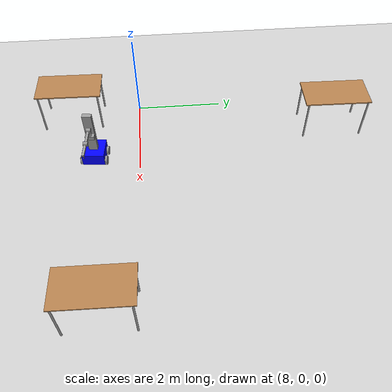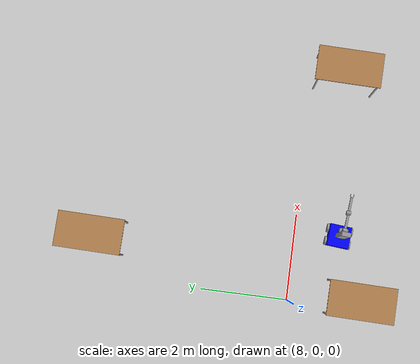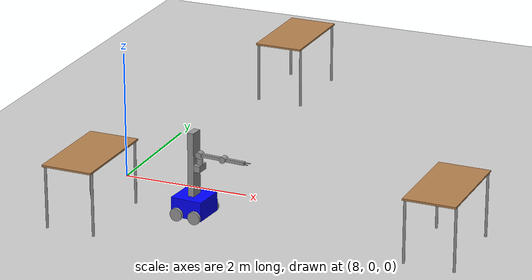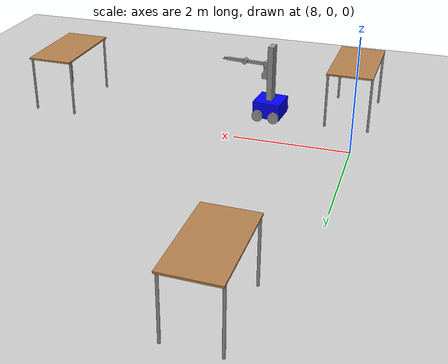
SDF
<sdf version="1.6">
 <world name="default">
  <model name="ground_plane">
   <static>1</static>
   <link name="link">
    <collision name="collision">
     <geometry><plane><normal>0 0 1</normal><size>100 100</size></plane></geometry>
     <surface>
      <contact><collide_bitmask>65535</collide_bitmask></contact>
      <friction><ode><mu>100</mu><mu2>50</mu2></ode></friction>
     </surface>
    </collision>
    <visual name="visual">
     <cast_shadows>0</cast_shadows>
     <geometry><plane><normal>0 0 1</normal><size>100 100</size></plane></geometry>
     <material>
      <script><uri>file://media/materials/scripts/gazebo.material</uri><name>Gazebo/Grey</name></script>
     </material>
    </visual>
   </link>
  </model>
  <model name="table">
   <static>1</static>
   <link name="link">
    <collision name="surface">
     <pose>0 0 1 0 -0 0</pose>
     <geometry><box><size>1.5 0.8 0.03</size></box></geometry>
     <surface><friction><ode><mu>0.6</mu><mu2>0.6</mu2></ode></friction></surface>
    </collision>
    <visual name="visual1">
     <pose>0 0 1 0 -0 0</pose>
     <geometry><box><size>1.5 0.8 0.03</size></box></geometry>
     <material>
      <script><uri>file://media/materials/scripts/gazebo.material</uri><name>Gazebo/Wood</name></script>
     </material>
    </visual>
    <collision name="front_left_leg">
     <pose>0.68 0.38 0.5 0 -0 0</pose>
     <geometry><cylinder><radius>0.02</radius><length>1</length></cylinder></geometry>
    </collision>
    <visual name="front_left_leg">
     <pose>0.68 0.38 0.5 0 -0 0</pose>
     <geometry><cylinder><radius>0.02</radius><length>1</length></cylinder></geometry>
     <material>
      <script><uri>file://media/materials/scripts/gazebo.material</uri><name>Gazebo/Grey</name></script>
     </material>
    </visual>
    <collision name="front_right_leg">
     <pose>0.68 -0.38 0.5 0 -0 0</pose>
     <geometry><cylinder><radius>0.02</radius><length>1</length></cylinder></geometry>
    </collision>
    <visual name="front_right_leg">
     <pose>0.68 -0.38 0.5 0 -0 0</pose>
     <geometry><cylinder><radius>0.02</radius><length>1</length></cylinder></geometry>
     <material>
      <script><uri>file://media/materials/scripts/gazebo.material</uri><name>Gazebo/Grey</name></script>
     </material>
    </visual>
    <collision name="back_right_leg">
     <pose>-0.68 -0.38 0.5 0 -0 0</pose>
     <geometry><cylinder><radius>0.02</radius><length>1</length></cylinder></geometry>
    </collision>
    <visual name="back_right_leg">
     <pose>-0.68 -0.38 0.5 0 -0 0</pose>
     <geometry><cylinder><radius>0.02</radius><length>1</length></cylinder></geometry>
     <material>
      <script><uri>file://media/materials/scripts/gazebo.material</uri><name>Gazebo/Grey</name></script>
     </material>
    </visual>
    <collision name="back_left_leg">
     <pose>-0.68 0.38 0.5 0 -0 0</pose>
     <geometry><cylinder><radius>0.02</radius><length>1</length></cylinder></geometry>
    </collision>
    <visual name="back_left_leg">
     <pose>-0.68 0.38 0.5 0 -0 0</pose>
     <geometry><cylinder><radius>0.02</radius><length>1</length></cylinder></geometry>
     <material>
      <script><uri>file://media/materials/scripts/gazebo.material</uri><name>Gazebo/Grey</name></script>
     </material>
    </visual>
   </link>
   <pose>8.20088 -1.5751 0 0 0 -1.59012</pose>
  </model>
  <model name="table_clone">
   <static>1</static>
   <link name="link">
    <collision name="surface">
     <pose>0 0 1 0 -0 0</pose>
     <geometry><box><size>1.5 0.8 0.03</size></box></geometry>
     <surface><friction><ode><mu>0.6</mu><mu2>0.6</mu2></ode></friction></surface>
    </collision>
    <visual name="visual1">
     <pose>0 0 1 0 -0 0</pose>
     <geometry><box><size>1.5 0.8 0.03</size></box></geometry>
     <material>
      <script><uri>file://media/materials/scripts/gazebo.material</uri><name>Gazebo/Wood</name></script>
     </material>
    </visual>
    <collision name="front_left_leg">
     <pose>0.68 0.38 0.5 0 -0 0</pose>
     <geometry><cylinder><radius>0.02</radius><length>1</length></cylinder></geometry>
    </collision>
    <visual name="front_left_leg">
     <pose>0.68 0.38 0.5 0 -0 0</pose>
     <geometry><cylinder><radius>0.02</radius><length>1</length></cylinder></geometry>
     <material>
      <script><uri>file://media/materials/scripts/gazebo.material</uri><name>Gazebo/Grey</name></script>
     </material>
    </visual>
    <collision name="front_right_leg">
     <pose>0.68 -0.38 0.5 0 -0 0</pose>
     <geometry><cylinder><radius>0.02</radius><length>1</length></cylinder></geometry>
    </collision>
    <visual name="front_right_leg">
     <pose>0.68 -0.38 0.5 0 -0 0</pose>
     <geometry><cylinder><radius>0.02</radius><length>1</length></cylinder></geometry>
     <material>
      <script><uri>file://media/materials/scripts/gazebo.material</uri><name>Gazebo/Grey</name></script>
     </material>
    </visual>
    <collision name="back_right_leg">
     <pose>-0.68 -0.38 0.5 0 -0 0</pose>
     <geometry><cylinder><radius>0.02</radius><length>1</length></cylinder></geometry>
    </collision>
    <visual name="back_right_leg">
     <pose>-0.68 -0.38 0.5 0 -0 0</pose>
     <geometry><cylinder><radius>0.02</radius><length>1</length></cylinder></geometry>
     <material>
      <script><uri>file://media/materials/scripts/gazebo.material</uri><name>Gazebo/Grey</name></script>
     </material>
    </visual>
    <collision name="back_left_leg">
     <pose>-0.68 0.38 0.5 0 -0 0</pose>
     <geometry><cylinder><radius>0.02</radius><length>1</length></cylinder></geometry>
    </collision>
    <visual name="back_left_leg">
     <pose>-0.68 0.38 0.5 0 -0 0</pose>
     <geometry><cylinder><radius>0.02</radius><length>1</length></cylinder></geometry>
     <material>
      <script><uri>file://media/materials/scripts/gazebo.material</uri><name>Gazebo/Grey</name></script>
     </material>
    </visual>
   </link>
   <pose>13.4268 -0.719124 0 0 0 -1.59012</pose>
  </model>
  <model name="mymobilearm">
   <link name="link_0">
    <inertial>
     <mass>1</mass>
     <inertia>
      <ixx>0.166667</ixx>
      <ixy>0</ixy>
      <ixz>0</ixz>
      <iyy>0.166667</iyy>
      <iyz>0</iyz>
      <izz>0.166667</izz>
     </inertia>
    </inertial>
    <pose>-0.332375 0 -0.496874 0 -0 0</pose>
    <visual name="visual">
     <geometry><box><size>0.5 0.5 0.3</size></box></geometry>
     <material>
      <lighting>1</lighting>
      <script><uri>file://media/materials/scripts/gazebo.material</uri><name>Gazebo/Grey</name></script>
      <shader type="pixel"><normal_map>__default__</normal_map></shader>
      <ambient>0 0 1 1</ambient>
      <diffuse>0.7 0.7 0.7 1</diffuse>
      <specular>0.01 0.01 0.01 1</specular>
      <emissive>0 0 0 1</emissive>
     </material>
    </visual>
    <collision name="collision">
     <geometry><box><size>0.5 0.5 0.3</size></box></geometry>
     <surface>
      <friction>
       <ode><mu>1</mu><mu2>1</mu2><fdir1>0 0 0</fdir1><slip1>0</slip1><slip2>0</slip2></ode>
       <torsional>
        <coefficient>1</coefficient>
        <patch_radius>0</patch_radius>
        <surface_radius>0</surface_radius>
        <use_patch_radius>1</use_patch_radius>
        <ode><slip>0</slip></ode>
       </torsional>
      </friction>
      <bounce><restitution_coefficient>0</restitution_coefficient><threshold>1e+06</threshold></bounce>
      <contact>
       <collide_without_contact>0</collide_without_contact>
       <collide_without_contact_bitmask>1</collide_without_contact_bitmask>
       <collide_bitmask>1</collide_bitmask>
       <ode>
        <soft_cfm>0</soft_cfm>
        <soft_erp>0.2</soft_erp>
        <kp>1e+13</kp>
        <kd>1</kd>
        <max_vel>0.01</max_vel>
        <min_depth>0</min_depth>
       </ode>
       <bullet>
        <split_impulse>1</split_impulse>
        <split_impulse_penetration_threshold>-0.01</split_impulse_penetration_threshold>
        <soft_cfm>0</soft_cfm>
        <soft_erp>0.2</soft_erp>
        <kp>1e+13</kp>
        <kd>1</kd>
       </bullet>
      </contact>
     </surface>
    </collision>
   </link>
   <link name="link_10">
    <inertial>
     <mass>1</mass>
     <inertia>
      <ixx>0.166667</ixx>
      <ixy>0</ixy>
      <ixz>0</ixz>
      <iyy>0.166667</iyy>
      <iyz>0</iyz>
      <izz>0.166667</izz>
     </inertia>
    </inertial>
    <pose>-0.332375 0 0.153126 0 -0 0</pose>
    <visual name="visual">
     <geometry><box><size>0.1 0.2 1</size></box></geometry>
     <material>
      <lighting>1</lighting>
      <script><uri>file://media/materials/scripts/gazebo.material</uri><name>Gazebo/Grey</name></script>
      <shader type="pixel"><normal_map>__default__</normal_map></shader>
      <ambient>0.3 0.3 0.3 1</ambient>
      <diffuse>0.7 0.7 0.7 1</diffuse>
      <specular>0.01 0.01 0.01 1</specular>
      <emissive>0 0 0 1</emissive>
     </material>
    </visual>
    <collision name="collision">
     <geometry><box><size>0.1 0.2 1</size></box></geometry>
     <surface>
      <friction>
       <ode><mu>1</mu><mu2>1</mu2><fdir1>0 0 0</fdir1><slip1>0</slip1><slip2>0</slip2></ode>
       <torsional>
        <coefficient>1</coefficient>
        <patch_radius>0</patch_radius>
        <surface_radius>0</surface_radius>
        <use_patch_radius>1</use_patch_radius>
        <ode><slip>0</slip></ode>
       </torsional>
      </friction>
      <bounce><restitution_coefficient>0</restitution_coefficient><threshold>1e+06</threshold></bounce>
      <contact>
       <collide_without_contact>0</collide_without_contact>
       <collide_without_contact_bitmask>1</collide_without_contact_bitmask>
       <collide_bitmask>1</collide_bitmask>
       <ode>
        <soft_cfm>0</soft_cfm>
        <soft_erp>0.2</soft_erp>
        <kp>1e+13</kp>
        <kd>1</kd>
        <max_vel>0.01</max_vel>
        <min_depth>0</min_depth>
       </ode>
       <bullet>
        <split_impulse>1</split_impulse>
        <split_impulse_penetration_threshold>-0.01</split_impulse_penetration_threshold>
        <soft_cfm>0</soft_cfm>
        <soft_erp>0.2</soft_erp>
        <kp>1e+13</kp>
        <kd>1</kd>
       </bullet>
      </contact>
     </surface>
    </collision>
   </link>
   <link name="link_11">
    <inertial>
     <mass>1</mass>
     <inertia>
      <ixx>0.166667</ixx>
      <ixy>0</ixy>
      <ixz>0</ixz>
      <iyy>0.166667</iyy>
      <iyz>0</iyz>
      <izz>0.166667</izz>
     </inertia>
    </inertial>
    <pose>-0.232375 0 0.103126 0 -0 0</pose>
    <visual name="visual">
     <geometry><box><size>0.1 0.2 0.1</size></box></geometry>
     <material>
      <lighting>1</lighting>
      <script><uri>file://media/materials/scripts/gazebo.material</uri><name>Gazebo/Grey</name></script>
      <shader type="pixel"><normal_map>__default__</normal_map></shader>
      <ambient>0.3 0.3 0.3 1</ambient>
      <diffuse>0.7 0.7 0.7 1</diffuse>
      <specular>0.01 0.01 0.01 1</specular>
      <emissive>0 0 0 1</emissive>
     </material>
    </visual>
    <collision name="collision">
     <geometry><box><size>0.1 0.2 0.1</size></box></geometry>
     <surface>
      <friction>
       <ode><mu>1</mu><mu2>1</mu2><fdir1>0 0 0</fdir1><slip1>0</slip1><slip2>0</slip2></ode>
       <torsional>
        <coefficient>1</coefficient>
        <patch_radius>0</patch_radius>
        <surface_radius>0</surface_radius>
        <use_patch_radius>1</use_patch_radius>
        <ode><slip>0</slip></ode>
       </torsional>
      </friction>
      <bounce><restitution_coefficient>0</restitution_coefficient><threshold>1e+06</threshold></bounce>
      <contact>
       <collide_without_contact>0</collide_without_contact>
       <collide_without_contact_bitmask>1</collide_without_contact_bitmask>
       <collide_bitmask>1</collide_bitmask>
       <ode>
        <soft_cfm>0</soft_cfm>
        <soft_erp>0.2</soft_erp>
        <kp>1e+13</kp>
        <kd>1</kd>
        <max_vel>0.01</max_vel>
        <min_depth>0</min_depth>
       </ode>
       <bullet>
        <split_impulse>1</split_impulse>
        <split_impulse_penetration_threshold>-0.01</split_impulse_penetration_threshold>
        <soft_cfm>0</soft_cfm>
        <soft_erp>0.2</soft_erp>
        <kp>1e+13</kp>
        <kd>1</kd>
       </bullet>
      </contact>
     </surface>
    </collision>
   </link>
   <link name="link_12">
    <inertial>
     <mass>1</mass>
     <inertia><ixx>0.145833</ixx><ixy>0</ixy><ixz>0</ixz><iyy>0.145833</iyy><iyz>0</iyz><izz>0.125</izz></inertia>
    </inertial>
    <pose>-0.232375 0 0.203126 0 -0 0</pose>
    <visual name="visual">
     <geometry><cylinder><radius>0.05</radius><length>0.1</length></cylinder></geometry>
     <material>
      <lighting>1</lighting>
      <script><uri>file://media/materials/scripts/gazebo.material</uri><name>Gazebo/Grey</name></script>
      <shader type="pixel"><normal_map>__default__</normal_map></shader>
      <ambient>0.3 0.3 0.3 1</ambient>
      <diffuse>0.7 0.7 0.7 1</diffuse>
      <specular>0.01 0.01 0.01 1</specular>
      <emissive>0 0 0 1</emissive>
     </material>
    </visual>
    <collision name="collision">
     <geometry><cylinder><radius>0.05</radius><length>0.1</length></cylinder></geometry>
     <surface>
      <friction>
       <ode><mu>1</mu><mu2>1</mu2><fdir1>0 0 0</fdir1><slip1>0</slip1><slip2>0</slip2></ode>
       <torsional>
        <coefficient>1</coefficient>
        <patch_radius>0</patch_radius>
        <surface_radius>0</surface_radius>
        <use_patch_radius>1</use_patch_radius>
        <ode><slip>0</slip></ode>
       </torsional>
      </friction>
      <bounce><restitution_coefficient>0</restitution_coefficient><threshold>1e+06</threshold></bounce>
      <contact>
       <collide_without_contact>0</collide_without_contact>
       <collide_without_contact_bitmask>1</collide_without_contact_bitmask>
       <collide_bitmask>1</collide_bitmask>
       <ode>
        <soft_cfm>0</soft_cfm>
        <soft_erp>0.2</soft_erp>
        <kp>1e+13</kp>
        <kd>1</kd>
        <max_vel>0.01</max_vel>
        <min_depth>0</min_depth>
       </ode>
       <bullet>
        <split_impulse>1</split_impulse>
        <split_impulse_penetration_threshold>-0.01</split_impulse_penetration_threshold>
        <soft_cfm>0</soft_cfm>
        <soft_erp>0.2</soft_erp>
        <kp>1e+13</kp>
        <kd>1</kd>
       </bullet>
      </contact>
     </surface>
    </collision>
   </link>
   <link name="link_12_clone">
    <inertial>
     <mass>1</mass>
     <inertia><ixx>0.145833</ixx><ixy>0</ixy><ixz>0</ixz><iyy>0.145833</iyy><iyz>0</iyz><izz>0.125</izz></inertia>
    </inertial>
    <pose>-0.232375 0 0.303126 1.5707 -0 0</pose>
    <visual name="visual">
     <geometry><cylinder><radius>0.05</radius><length>0.1</length></cylinder></geometry>
     <material>
      <lighting>1</lighting>
      <script><uri>file://media/materials/scripts/gazebo.material</uri><name>Gazebo/Grey</name></script>
      <shader type="pixel"><normal_map>__default__</normal_map></shader>
      <ambient>0.3 0.3 0.3 1</ambient>
      <diffuse>0.7 0.7 0.7 1</diffuse>
      <specular>0.01 0.01 0.01 1</specular>
      <emissive>0 0 0 1</emissive>
     </material>
    </visual>
    <collision name="collision">
     <geometry><cylinder><radius>0.05</radius><length>0.1</length></cylinder></geometry>
     <surface>
      <friction>
       <ode><mu>1</mu><mu2>1</mu2><fdir1>0 0 0</fdir1><slip1>0</slip1><slip2>0</slip2></ode>
       <torsional>
        <coefficient>1</coefficient>
        <patch_radius>0</patch_radius>
        <surface_radius>0</surface_radius>
        <use_patch_radius>1</use_patch_radius>
        <ode><slip>0</slip></ode>
       </torsional>
      </friction>
      <bounce><restitution_coefficient>0</restitution_coefficient><threshold>1e+06</threshold></bounce>
      <contact>
       <collide_without_contact>0</collide_without_contact>
       <collide_without_contact_bitmask>1</collide_without_contact_bitmask>
       <collide_bitmask>1</collide_bitmask>
       <ode>
        <soft_cfm>0</soft_cfm>
        <soft_erp>0.2</soft_erp>
        <kp>1e+13</kp>
        <kd>1</kd>
        <max_vel>0.01</max_vel>
        <min_depth>0</min_depth>
       </ode>
       <bullet>
        <split_impulse>1</split_impulse>
        <split_impulse_penetration_threshold>-0.01</split_impulse_penetration_threshold>
        <soft_cfm>0</soft_cfm>
        <soft_erp>0.2</soft_erp>
        <kp>1e+13</kp>
        <kd>1</kd>
       </bullet>
      </contact>
     </surface>
    </collision>
   </link>
   <link name="link_12_clone_clone">
    <inertial>
     <mass>1</mass>
     <inertia><ixx>0.145833</ixx><ixy>0</ixy><ixz>0</ixz><iyy>0.145833</iyy><iyz>0</iyz><izz>0.125</izz></inertia>
    </inertial>
    <pose>0.167625 0 0.303126 1.5707 -0 0</pose>
    <visual name="visual">
     <geometry><cylinder><radius>0.05</radius><length>0.1</length></cylinder></geometry>
     <material>
      <lighting>1</lighting>
      <script><uri>file://media/materials/scripts/gazebo.material</uri><name>Gazebo/Grey</name></script>
      <shader type="pixel"><normal_map>__default__</normal_map></shader>
      <ambient>0.3 0.3 0.3 1</ambient>
      <diffuse>0.7 0.7 0.7 1</diffuse>
      <specular>0.01 0.01 0.01 1</specular>
      <emissive>0 0 0 1</emissive>
     </material>
    </visual>
    <collision name="collision">
     <geometry><cylinder><radius>0.05</radius><length>0.1</length></cylinder></geometry>
     <surface>
      <friction>
       <ode><mu>1</mu><mu2>1</mu2><fdir1>0 0 0</fdir1><slip1>0</slip1><slip2>0</slip2></ode>
       <torsional>
        <coefficient>1</coefficient>
        <patch_radius>0</patch_radius>
        <surface_radius>0</surface_radius>
        <use_patch_radius>1</use_patch_radius>
        <ode><slip>0</slip></ode>
       </torsional>
      </friction>
      <bounce><restitution_coefficient>0</restitution_coefficient><threshold>1e+06</threshold></bounce>
      <contact>
       <collide_without_contact>0</collide_without_contact>
       <collide_without_contact_bitmask>1</collide_without_contact_bitmask>
       <collide_bitmask>1</collide_bitmask>
       <ode>
        <soft_cfm>0</soft_cfm>
        <soft_erp>0.2</soft_erp>
        <kp>1e+13</kp>
        <kd>1</kd>
        <max_vel>0.01</max_vel>
        <min_depth>0</min_depth>
       </ode>
       <bullet>
        <split_impulse>1</split_impulse>
        <split_impulse_penetration_threshold>-0.01</split_impulse_penetration_threshold>
        <soft_cfm>0</soft_cfm>
        <soft_erp>0.2</soft_erp>
        <kp>1e+13</kp>
        <kd>1</kd>
       </bullet>
      </contact>
     </surface>
    </collision>
   </link>
   <link name="link_14">
    <inertial>
     <mass>1</mass>
     <inertia>
      <ixx>0.166667</ixx>
      <ixy>0</ixy>
      <ixz>0</ixz>
      <iyy>0.166667</iyy>
      <iyz>0</iyz>
      <izz>0.166667</izz>
     </inertia>
    </inertial>
    <pose>-0.032375 0 0.303126 1.5707 -0 0</pose>
    <visual name="visual">
     <geometry><box><size>0.3 0.05 0.05</size></box></geometry>
     <material>
      <lighting>1</lighting>
      <script><uri>file://media/materials/scripts/gazebo.material</uri><name>Gazebo/Grey</name></script>
      <shader type="pixel"><normal_map>__default__</normal_map></shader>
      <ambient>0.3 0.3 0.3 1</ambient>
      <diffuse>0.7 0.7 0.7 1</diffuse>
      <specular>0.01 0.01 0.01 1</specular>
      <emissive>0 0 0 1</emissive>
     </material>
    </visual>
    <collision name="collision">
     <geometry><box><size>0.3 0.05 0.05</size></box></geometry>
     <surface>
      <friction>
       <ode><mu>1</mu><mu2>1</mu2><fdir1>0 0 0</fdir1><slip1>0</slip1><slip2>0</slip2></ode>
       <torsional>
        <coefficient>1</coefficient>
        <patch_radius>0</patch_radius>
        <surface_radius>0</surface_radius>
        <use_patch_radius>1</use_patch_radius>
        <ode><slip>0</slip></ode>
       </torsional>
      </friction>
      <bounce><restitution_coefficient>0</restitution_coefficient><threshold>1e+06</threshold></bounce>
      <contact>
       <collide_without_contact>0</collide_without_contact>
       <collide_without_contact_bitmask>1</collide_without_contact_bitmask>
       <collide_bitmask>1</collide_bitmask>
       <ode>
        <soft_cfm>0</soft_cfm>
        <soft_erp>0.2</soft_erp>
        <kp>1e+13</kp>
        <kd>1</kd>
        <max_vel>0.01</max_vel>
        <min_depth>0</min_depth>
       </ode>
       <bullet>
        <split_impulse>1</split_impulse>
        <split_impulse_penetration_threshold>-0.01</split_impulse_penetration_threshold>
        <soft_cfm>0</soft_cfm>
        <soft_erp>0.2</soft_erp>
        <kp>1e+13</kp>
        <kd>1</kd>
       </bullet>
      </contact>
     </surface>
    </collision>
   </link>
   <link name="link_14_clone">
    <inertial>
     <mass>1</mass>
     <inertia>
      <ixx>0.166667</ixx>
      <ixy>0</ixy>
      <ixz>0</ixz>
      <iyy>0.166667</iyy>
      <iyz>0</iyz>
      <izz>0.166667</izz>
     </inertia>
    </inertial>
    <pose>0.367625 0 0.303126 1.5707 -0 0</pose>
    <visual name="visual">
     <geometry><box><size>0.3 0.05 0.05</size></box></geometry>
     <material>
      <lighting>1</lighting>
      <script><uri>file://media/materials/scripts/gazebo.material</uri><name>Gazebo/Grey</name></script>
      <shader type="pixel"><normal_map>__default__</normal_map></shader>
      <ambient>0.3 0.3 0.3 1</ambient>
      <diffuse>0.7 0.7 0.7 1</diffuse>
      <specular>0.01 0.01 0.01 1</specular>
      <emissive>0 0 0 1</emissive>
     </material>
    </visual>
    <collision name="collision">
     <geometry><box><size>0.3 0.05 0.05</size></box></geometry>
     <surface>
      <friction>
       <ode><mu>1</mu><mu2>1</mu2><fdir1>0 0 0</fdir1><slip1>0</slip1><slip2>0</slip2></ode>
       <torsional>
        <coefficient>1</coefficient>
        <patch_radius>0</patch_radius>
        <surface_radius>0</surface_radius>
        <use_patch_radius>1</use_patch_radius>
        <ode><slip>0</slip></ode>
       </torsional>
      </friction>
      <bounce><restitution_coefficient>0</restitution_coefficient><threshold>1e+06</threshold></bounce>
      <contact>
       <collide_without_contact>0</collide_without_contact>
       <collide_without_contact_bitmask>1</collide_without_contact_bitmask>
       <collide_bitmask>1</collide_bitmask>
       <ode>
        <soft_cfm>0</soft_cfm>
        <soft_erp>0.2</soft_erp>
        <kp>1e+13</kp>
        <kd>1</kd>
        <max_vel>0.01</max_vel>
        <min_depth>0</min_depth>
       </ode>
       <bullet>
        <split_impulse>1</split_impulse>
        <split_impulse_penetration_threshold>-0.01</split_impulse_penetration_threshold>
        <soft_cfm>0</soft_cfm>
        <soft_erp>0.2</soft_erp>
        <kp>1e+13</kp>
        <kd>1</kd>
       </bullet>
      </contact>
     </surface>
    </collision>
   </link>
   <link name="link_15">
    <inertial>
     <mass>1</mass>
     <inertia>
      <ixx>0.166667</ixx>
      <ixy>0</ixy>
      <ixz>0</ixz>
      <iyy>0.166667</iyy>
      <iyz>0</iyz>
      <izz>0.166667</izz>
     </inertia>
    </inertial>
    <pose>0.566625 0.036 0.303126 0 -0 0</pose>
    <visual name="visual">
     <geometry><box><size>0.05 0.01 0.01</size></box></geometry>
     <material>
      <lighting>1</lighting>
      <script><uri>file://media/materials/scripts/gazebo.material</uri><name>Gazebo/Grey</name></script>
      <shader type="pixel"><normal_map>__default__</normal_map></shader>
      <ambient>0.3 0.3 0.3 1</ambient>
      <diffuse>0.7 0.7 0.7 1</diffuse>
      <specular>0.01 0.01 0.01 1</specular>
      <emissive>0 0 0 1</emissive>
     </material>
    </visual>
    <collision name="collision">
     <geometry><box><size>0.05 0.01 0.01</size></box></geometry>
     <surface>
      <friction>
       <ode><mu>1</mu><mu2>1</mu2><fdir1>0 0 0</fdir1><slip1>0</slip1><slip2>0</slip2></ode>
       <torsional>
        <coefficient>1</coefficient>
        <patch_radius>0</patch_radius>
        <surface_radius>0</surface_radius>
        <use_patch_radius>1</use_patch_radius>
        <ode><slip>0</slip></ode>
       </torsional>
      </friction>
      <bounce><restitution_coefficient>0</restitution_coefficient><threshold>1e+06</threshold></bounce>
      <contact>
       <collide_without_contact>0</collide_without_contact>
       <collide_without_contact_bitmask>1</collide_without_contact_bitmask>
       <collide_bitmask>1</collide_bitmask>
       <ode>
        <soft_cfm>0</soft_cfm>
        <soft_erp>0.2</soft_erp>
        <kp>1e+13</kp>
        <kd>1</kd>
        <max_vel>0.01</max_vel>
        <min_depth>0</min_depth>
       </ode>
       <bullet>
        <split_impulse>1</split_impulse>
        <split_impulse_penetration_threshold>-0.01</split_impulse_penetration_threshold>
        <soft_cfm>0</soft_cfm>
        <soft_erp>0.2</soft_erp>
        <kp>1e+13</kp>
        <kd>1</kd>
       </bullet>
      </contact>
     </surface>
    </collision>
   </link>
   <link name="link_15_clone">
    <inertial>
     <mass>1</mass>
     <inertia>
      <ixx>0.166667</ixx>
      <ixy>0</ixy>
      <ixz>0</ixz>
      <iyy>0.166667</iyy>
      <iyz>0</iyz>
      <izz>0.166667</izz>
     </inertia>
    </inertial>
    <pose>0.566625 -0.036 0.303126 0 -0 0</pose>
    <visual name="visual">
     <geometry><box><size>0.05 0.01 0.01</size></box></geometry>
     <material>
      <lighting>1</lighting>
      <script><uri>file://media/materials/scripts/gazebo.material</uri><name>Gazebo/Grey</name></script>
      <shader type="pixel"><normal_map>__default__</normal_map></shader>
      <ambient>0.3 0.3 0.3 1</ambient>
      <diffuse>0.7 0.7 0.7 1</diffuse>
      <specular>0.01 0.01 0.01 1</specular>
      <emissive>0 0 0 1</emissive>
     </material>
    </visual>
    <collision name="collision">
     <geometry><box><size>0.05 0.01 0.01</size></box></geometry>
     <surface>
      <friction>
       <ode><mu>1</mu><mu2>1</mu2><fdir1>0 0 0</fdir1><slip1>0</slip1><slip2>0</slip2></ode>
       <torsional>
        <coefficient>1</coefficient>
        <patch_radius>0</patch_radius>
        <surface_radius>0</surface_radius>
        <use_patch_radius>1</use_patch_radius>
        <ode><slip>0</slip></ode>
       </torsional>
      </friction>
      <bounce><restitution_coefficient>0</restitution_coefficient><threshold>1e+06</threshold></bounce>
      <contact>
       <collide_without_contact>0</collide_without_contact>
       <collide_without_contact_bitmask>1</collide_without_contact_bitmask>
       <collide_bitmask>1</collide_bitmask>
       <ode>
        <soft_cfm>0</soft_cfm>
        <soft_erp>0.2</soft_erp>
        <kp>1e+13</kp>
        <kd>1</kd>
        <max_vel>0.01</max_vel>
        <min_depth>0</min_depth>
       </ode>
       <bullet>
        <split_impulse>1</split_impulse>
        <split_impulse_penetration_threshold>-0.01</split_impulse_penetration_threshold>
        <soft_cfm>0</soft_cfm>
        <soft_erp>0.2</soft_erp>
        <kp>1e+13</kp>
        <kd>1</kd>
       </bullet>
      </contact>
     </surface>
    </collision>
   </link>
   <link name="link_15_clone_0">
    <inertial>
     <mass>1</mass>
     <inertia>
      <ixx>0.166667</ixx>
      <ixy>0</ixy>
      <ixz>0</ixz>
      <iyy>0.166667</iyy>
      <iyz>0</iyz>
      <izz>0.166667</izz>
     </inertia>
    </inertial>
    <pose>0.527625 -0.02 0.303126 0 0 -0.785398</pose>
    <visual name="visual">
     <geometry><box><size>0.05 0.01 0.01</size></box></geometry>
     <material>
      <lighting>1</lighting>
      <script><uri>file://media/materials/scripts/gazebo.material</uri><name>Gazebo/Grey</name></script>
      <shader type="pixel"><normal_map>__default__</normal_map></shader>
      <ambient>0.3 0.3 0.3 1</ambient>
      <diffuse>0.7 0.7 0.7 1</diffuse>
      <specular>0.01 0.01 0.01 1</specular>
      <emissive>0 0 0 1</emissive>
     </material>
    </visual>
    <collision name="collision">
     <geometry><box><size>0.05 0.01 0.01</size></box></geometry>
     <surface>
      <friction>
       <ode><mu>1</mu><mu2>1</mu2><fdir1>0 0 0</fdir1><slip1>0</slip1><slip2>0</slip2></ode>
       <torsional>
        <coefficient>1</coefficient>
        <patch_radius>0</patch_radius>
        <surface_radius>0</surface_radius>
        <use_patch_radius>1</use_patch_radius>
        <ode><slip>0</slip></ode>
       </torsional>
      </friction>
      <bounce><restitution_coefficient>0</restitution_coefficient><threshold>1e+06</threshold></bounce>
      <contact>
       <collide_without_contact>0</collide_without_contact>
       <collide_without_contact_bitmask>1</collide_without_contact_bitmask>
       <collide_bitmask>1</collide_bitmask>
       <ode>
        <soft_cfm>0</soft_cfm>
        <soft_erp>0.2</soft_erp>
        <kp>1e+13</kp>
        <kd>1</kd>
        <max_vel>0.01</max_vel>
        <min_depth>0</min_depth>
       </ode>
       <bullet>
        <split_impulse>1</split_impulse>
        <split_impulse_penetration_threshold>-0.01</split_impulse_penetration_threshold>
        <soft_cfm>0</soft_cfm>
        <soft_erp>0.2</soft_erp>
        <kp>1e+13</kp>
        <kd>1</kd>
       </bullet>
      </contact>
     </surface>
    </collision>
   </link>
   <link name="link_15_clone_1">
    <inertial>
     <mass>1</mass>
     <inertia>
      <ixx>0.166667</ixx>
      <ixy>0</ixy>
      <ixz>0</ixz>
      <iyy>0.166667</iyy>
      <iyz>0</iyz>
      <izz>0.166667</izz>
     </inertia>
    </inertial>
    <pose>0.527625 0.02 0.303126 0 -0 0.785398</pose>
    <visual name="visual">
     <geometry><box><size>0.05 0.01 0.01</size></box></geometry>
     <material>
      <lighting>1</lighting>
      <script><uri>file://media/materials/scripts/gazebo.material</uri><name>Gazebo/Grey</name></script>
      <shader type="pixel"><normal_map>__default__</normal_map></shader>
      <ambient>0.3 0.3 0.3 1</ambient>
      <diffuse>0.7 0.7 0.7 1</diffuse>
      <specular>0.01 0.01 0.01 1</specular>
      <emissive>0 0 0 1</emissive>
     </material>
    </visual>
    <collision name="collision">
     <geometry><box><size>0.05 0.01 0.01</size></box></geometry>
     <surface>
      <friction>
       <ode><mu>1</mu><mu2>1</mu2><fdir1>0 0 0</fdir1><slip1>0</slip1><slip2>0</slip2></ode>
       <torsional>
        <coefficient>1</coefficient>
        <patch_radius>0</patch_radius>
        <surface_radius>0</surface_radius>
        <use_patch_radius>1</use_patch_radius>
        <ode><slip>0</slip></ode>
       </torsional>
      </friction>
      <bounce><restitution_coefficient>0</restitution_coefficient><threshold>1e+06</threshold></bounce>
      <contact>
       <collide_without_contact>0</collide_without_contact>
       <collide_without_contact_bitmask>1</collide_without_contact_bitmask>
       <collide_bitmask>1</collide_bitmask>
       <ode>
        <soft_cfm>0</soft_cfm>
        <soft_erp>0.2</soft_erp>
        <kp>1e+13</kp>
        <kd>1</kd>
        <max_vel>0.01</max_vel>
        <min_depth>0</min_depth>
       </ode>
       <bullet>
        <split_impulse>1</split_impulse>
        <split_impulse_penetration_threshold>-0.01</split_impulse_penetration_threshold>
        <soft_cfm>0</soft_cfm>
        <soft_erp>0.2</soft_erp>
        <kp>1e+13</kp>
        <kd>1</kd>
       </bullet>
      </contact>
     </surface>
    </collision>
   </link>
   <link name="link_1_clone">
    <inertial>
     <mass>1</mass>
     <inertia><ixx>0.145833</ixx><ixy>0</ixy><ixz>0</ixz><iyy>0.145833</iyy><iyz>0</iyz><izz>0.125</izz></inertia>
     <pose>0 0 0.1 0 -0 0</pose>
    </inertial>
    <pose>-0.182375 0.27501 -0.596879 1.5707 -0 0</pose>
    <visual name="visual">
     <geometry><cylinder><radius>0.1</radius><length>0.05</length></cylinder></geometry>
     <material>
      <lighting>1</lighting>
      <script><uri>file://media/materials/scripts/gazebo.material</uri><name>Gazebo/Grey</name></script>
      <shader type="pixel"><normal_map>__default__</normal_map></shader>
      <ambient>0.3 0.3 0.3 1</ambient>
      <diffuse>0.7 0.7 0.7 1</diffuse>
      <specular>0.01 0.01 0.01 1</specular>
      <emissive>0 0 0 1</emissive>
     </material>
    </visual>
    <collision name="collision">
     <geometry><cylinder><radius>0.1</radius><length>0.05</length></cylinder></geometry>
     <surface>
      <friction>
       <ode><mu>1</mu><mu2>1</mu2><fdir1>0 0 0</fdir1><slip1>0</slip1><slip2>0</slip2></ode>
       <torsional>
        <coefficient>1</coefficient>
        <patch_radius>0</patch_radius>
        <surface_radius>0</surface_radius>
        <use_patch_radius>1</use_patch_radius>
        <ode><slip>0</slip></ode>
       </torsional>
      </friction>
      <bounce><restitution_coefficient>0</restitution_coefficient><threshold>1e+06</threshold></bounce>
      <contact>
       <collide_without_contact>0</collide_without_contact>
       <collide_without_contact_bitmask>1</collide_without_contact_bitmask>
       <collide_bitmask>1</collide_bitmask>
       <ode>
        <soft_cfm>0</soft_cfm>
        <soft_erp>0.2</soft_erp>
        <kp>1e+13</kp>
        <kd>1</kd>
        <max_vel>0.01</max_vel>
        <min_depth>0</min_depth>
       </ode>
       <bullet>
        <split_impulse>1</split_impulse>
        <split_impulse_penetration_threshold>-0.01</split_impulse_penetration_threshold>
        <soft_cfm>0</soft_cfm>
        <soft_erp>0.2</soft_erp>
        <kp>1e+13</kp>
        <kd>1</kd>
       </bullet>
      </contact>
     </surface>
    </collision>
   </link>
   <link name="link_1_clone_clone">
    <inertial>
     <mass>1</mass>
     <inertia><ixx>0.145833</ixx><ixy>0</ixy><ixz>0</ixz><iyy>0.145833</iyy><iyz>0</iyz><izz>0.125</izz></inertia>
     <pose>0 0 0.1 0 -0 0</pose>
    </inertial>
    <pose>-0.182375 -0.27501 -0.596879 1.5707 -0 0</pose>
    <visual name="visual">
     <geometry><cylinder><radius>0.1</radius><length>0.05</length></cylinder></geometry>
     <material>
      <lighting>1</lighting>
      <script><uri>file://media/materials/scripts/gazebo.material</uri><name>Gazebo/Grey</name></script>
      <shader type="pixel"><normal_map>__default__</normal_map></shader>
      <ambient>0.3 0.3 0.3 1</ambient>
      <diffuse>0.7 0.7 0.7 1</diffuse>
      <specular>0.01 0.01 0.01 1</specular>
      <emissive>0 0 0 1</emissive>
     </material>
    </visual>
    <collision name="collision">
     <geometry><cylinder><radius>0.1</radius><length>0.05</length></cylinder></geometry>
     <surface>
      <friction>
       <ode><mu>1</mu><mu2>1</mu2><fdir1>0 0 0</fdir1><slip1>0</slip1><slip2>0</slip2></ode>
       <torsional>
        <coefficient>1</coefficient>
        <patch_radius>0</patch_radius>
        <surface_radius>0</surface_radius>
        <use_patch_radius>1</use_patch_radius>
        <ode><slip>0</slip></ode>
       </torsional>
      </friction>
      <bounce><restitution_coefficient>0</restitution_coefficient><threshold>1e+06</threshold></bounce>
      <contact>
       <collide_without_contact>0</collide_without_contact>
       <collide_without_contact_bitmask>1</collide_without_contact_bitmask>
       <collide_bitmask>1</collide_bitmask>
       <ode>
        <soft_cfm>0</soft_cfm>
        <soft_erp>0.2</soft_erp>
        <kp>1e+13</kp>
        <kd>1</kd>
        <max_vel>0.01</max_vel>
        <min_depth>0</min_depth>
       </ode>
       <bullet>
        <split_impulse>1</split_impulse>
        <split_impulse_penetration_threshold>-0.01</split_impulse_penetration_threshold>
        <soft_cfm>0</soft_cfm>
        <soft_erp>0.2</soft_erp>
        <kp>1e+13</kp>
        <kd>1</kd>
       </bullet>
      </contact>
     </surface>
    </collision>
   </link>
   <link name="link_1_clone_clone_0">
    <inertial>
     <mass>1</mass>
     <inertia><ixx>0.145833</ixx><ixy>0</ixy><ixz>0</ixz><iyy>0.145833</iyy><iyz>0</iyz><izz>0.125</izz></inertia>
     <pose>0 0 0.1 0 -0 0</pose>
    </inertial>
    <pose>-0.482375 -0.27501 -0.596879 1.5707 -0 0</pose>
    <visual name="visual">
     <geometry><cylinder><radius>0.1</radius><length>0.05</length></cylinder></geometry>
     <material>
      <lighting>1</lighting>
      <script><uri>file://media/materials/scripts/gazebo.material</uri><name>Gazebo/Grey</name></script>
      <shader type="pixel"><normal_map>__default__</normal_map></shader>
      <ambient>0.3 0.3 0.3 1</ambient>
      <diffuse>0.7 0.7 0.7 1</diffuse>
      <specular>0.01 0.01 0.01 1</specular>
      <emissive>0 0 0 1</emissive>
     </material>
    </visual>
    <collision name="collision">
     <geometry><cylinder><radius>0.1</radius><length>0.05</length></cylinder></geometry>
     <surface>
      <friction>
       <ode><mu>1</mu><mu2>1</mu2><fdir1>0 0 0</fdir1><slip1>0</slip1><slip2>0</slip2></ode>
       <torsional>
        <coefficient>1</coefficient>
        <patch_radius>0</patch_radius>
        <surface_radius>0</surface_radius>
        <use_patch_radius>1</use_patch_radius>
        <ode><slip>0</slip></ode>
       </torsional>
      </friction>
      <bounce><restitution_coefficient>0</restitution_coefficient><threshold>1e+06</threshold></bounce>
      <contact>
       <collide_without_contact>0</collide_without_contact>
       <collide_without_contact_bitmask>1</collide_without_contact_bitmask>
       <collide_bitmask>1</collide_bitmask>
       <ode>
        <soft_cfm>0</soft_cfm>
        <soft_erp>0.2</soft_erp>
        <kp>1e+13</kp>
        <kd>1</kd>
        <max_vel>0.01</max_vel>
        <min_depth>0</min_depth>
       </ode>
       <bullet>
        <split_impulse>1</split_impulse>
        <split_impulse_penetration_threshold>-0.01</split_impulse_penetration_threshold>
        <soft_cfm>0</soft_cfm>
        <soft_erp>0.2</soft_erp>
        <kp>1e+13</kp>
        <kd>1</kd>
       </bullet>
      </contact>
     </surface>
    </collision>
   </link>
   <link name="link_1_clone_clone_1">
    <inertial>
     <mass>1</mass>
     <inertia><ixx>0.145833</ixx><ixy>0</ixy><ixz>0</ixz><iyy>0.145833</iyy><iyz>0</iyz><izz>0.125</izz></inertia>
     <pose>0 0 0.1 0 -0 0</pose>
    </inertial>
    <pose>-0.482375 0.27501 -0.596879 1.5707 -0 0</pose>
    <visual name="visual">
     <geometry><cylinder><radius>0.1</radius><length>0.05</length></cylinder></geometry>
     <material>
      <lighting>1</lighting>
      <script><uri>file://media/materials/scripts/gazebo.material</uri><name>Gazebo/Grey</name></script>
      <shader type="pixel"><normal_map>__default__</normal_map></shader>
      <ambient>0.3 0.3 0.3 1</ambient>
      <diffuse>0.7 0.7 0.7 1</diffuse>
      <specular>0.01 0.01 0.01 1</specular>
      <emissive>0 0 0 1</emissive>
     </material>
    </visual>
    <collision name="collision">
     <geometry><cylinder><radius>0.1</radius><length>0.05</length></cylinder></geometry>
     <surface>
      <friction>
       <ode><mu>1</mu><mu2>1</mu2><fdir1>0 0 0</fdir1><slip1>0</slip1><slip2>0</slip2></ode>
       <torsional>
        <coefficient>1</coefficient>
        <patch_radius>0</patch_radius>
        <surface_radius>0</surface_radius>
        <use_patch_radius>1</use_patch_radius>
        <ode><slip>0</slip></ode>
       </torsional>
      </friction>
      <bounce><restitution_coefficient>0</restitution_coefficient><threshold>1e+06</threshold></bounce>
      <contact>
       <collide_without_contact>0</collide_without_contact>
       <collide_without_contact_bitmask>1</collide_without_contact_bitmask>
       <collide_bitmask>1</collide_bitmask>
       <ode>
        <soft_cfm>0</soft_cfm>
        <soft_erp>0.2</soft_erp>
        <kp>1e+13</kp>
        <kd>1</kd>
        <max_vel>0.01</max_vel>
        <min_depth>0</min_depth>
       </ode>
       <bullet>
        <split_impulse>1</split_impulse>
        <split_impulse_penetration_threshold>-0.01</split_impulse_penetration_threshold>
        <soft_cfm>0</soft_cfm>
        <soft_erp>0.2</soft_erp>
        <kp>1e+13</kp>
        <kd>1</kd>
       </bullet>
      </contact>
     </surface>
    </collision>
   </link>
   <joint name="link_0_JOINT_0" type="revolute">
    <parent>link_0</parent>
    <child>link_1_clone</child>
    <axis>
     <xyz>0 0 1</xyz>
     <use_parent_model_frame>0</use_parent_model_frame>
     <limit>
      <lower>-1.79769e+308</lower>
      <upper>1.79769e+308</upper>
      <effort>-1</effort>
      <velocity>-1</velocity>
     </limit>
     <dynamics>
      <spring_reference>0</spring_reference>
      <spring_stiffness>0</spring_stiffness>
      <damping>0</damping>
      <friction>0</friction>
     </dynamics>
     <use_parent_model_frame>1</use_parent_model_frame>
    </axis>
    <physics>
     <ode><limit><cfm>0</cfm><erp>0.2</erp></limit><suspension><cfm>0</cfm><erp>0.2</erp></suspension></ode>
    </physics>
   </joint>
   <joint name="link_0_JOINT_13" type="fixed">
    <parent>link_0</parent>
    <child>link_10</child>
    <physics>
     <ode><limit><cfm>0</cfm><erp>0.2</erp></limit><suspension><cfm>0</cfm><erp>0.2</erp></suspension></ode>
    </physics>
   </joint>
   <joint name="link_0_JOINT_1" type="revolute">
    <parent>link_0</parent>
    <child>link_1_clone_clone_1</child>
    <axis>
     <xyz>0 0 1</xyz>
     <use_parent_model_frame>0</use_parent_model_frame>
     <limit>
      <lower>-1.79769e+308</lower>
      <upper>1.79769e+308</upper>
      <effort>-1</effort>
      <velocity>-1</velocity>
     </limit>
     <dynamics>
      <spring_reference>0</spring_reference>
      <spring_stiffness>0</spring_stiffness>
      <damping>0</damping>
      <friction>0</friction>
     </dynamics>
     <use_parent_model_frame>1</use_parent_model_frame>
    </axis>
    <physics>
     <ode><limit><cfm>0</cfm><erp>0.2</erp></limit><suspension><cfm>0</cfm><erp>0.2</erp></suspension></ode>
    </physics>
   </joint>
   <joint name="link_0_JOINT_2" type="revolute">
    <parent>link_0</parent>
    <child>link_1_clone_clone_0</child>
    <axis>
     <xyz>0 0 1</xyz>
     <use_parent_model_frame>0</use_parent_model_frame>
     <limit>
      <lower>-1.79769e+308</lower>
      <upper>1.79769e+308</upper>
      <effort>-1</effort>
      <velocity>-1</velocity>
     </limit>
     <dynamics>
      <spring_reference>0</spring_reference>
      <spring_stiffness>0</spring_stiffness>
      <damping>0</damping>
      <friction>0</friction>
     </dynamics>
     <use_parent_model_frame>1</use_parent_model_frame>
    </axis>
    <physics>
     <ode><limit><cfm>0</cfm><erp>0.2</erp></limit><suspension><cfm>0</cfm><erp>0.2</erp></suspension></ode>
    </physics>
   </joint>
   <joint name="link_0_JOINT_3" type="revolute">
    <parent>link_0</parent>
    <child>link_1_clone_clone</child>
    <axis>
     <xyz>0 0 1</xyz>
     <use_parent_model_frame>0</use_parent_model_frame>
     <limit>
      <lower>-1.79769e+308</lower>
      <upper>1.79769e+308</upper>
      <effort>-1</effort>
      <velocity>-1</velocity>
     </limit>
     <dynamics>
      <spring_reference>0</spring_reference>
      <spring_stiffness>0</spring_stiffness>
      <damping>0</damping>
      <friction>0</friction>
     </dynamics>
     <use_parent_model_frame>1</use_parent_model_frame>
    </axis>
    <physics>
     <ode><limit><cfm>0</cfm><erp>0.2</erp></limit><suspension><cfm>0</cfm><erp>0.2</erp></suspension></ode>
    </physics>
   </joint>
   <joint name="link_10_JOINT_14" type="prismatic">
    <parent>link_10</parent>
    <child>link_11</child>
    <axis>
     <xyz>0 0 1</xyz>
     <use_parent_model_frame>0</use_parent_model_frame>
     <limit>
      <lower>-1.79769e+308</lower>
      <upper>1.79769e+308</upper>
      <effort>-1</effort>
      <velocity>-1</velocity>
     </limit>
     <dynamics>
      <spring_reference>0</spring_reference>
      <spring_stiffness>0</spring_stiffness>
      <damping>0</damping>
      <friction>0</friction>
     </dynamics>
     <use_parent_model_frame>1</use_parent_model_frame>
    </axis>
    <physics>
     <ode><limit><cfm>0</cfm><erp>0.2</erp></limit><suspension><cfm>0</cfm><erp>0.2</erp></suspension></ode>
    </physics>
   </joint>
   <joint name="link_11_JOINT_15" type="revolute">
    <parent>link_11</parent>
    <child>link_12</child>
    <axis>
     <xyz>0 0 1</xyz>
     <use_parent_model_frame>0</use_parent_model_frame>
     <limit>
      <lower>-1.79769e+308</lower>
      <upper>1.79769e+308</upper>
      <effort>-1</effort>
      <velocity>-1</velocity>
     </limit>
     <dynamics>
      <spring_reference>0</spring_reference>
      <spring_stiffness>0</spring_stiffness>
      <damping>0</damping>
      <friction>0</friction>
     </dynamics>
     <use_parent_model_frame>1</use_parent_model_frame>
    </axis>
    <physics>
     <ode><limit><cfm>0</cfm><erp>0.2</erp></limit><suspension><cfm>0</cfm><erp>0.2</erp></suspension></ode>
    </physics>
   </joint>
   <joint name="link_12_JOINT_16" type="revolute">
    <parent>link_12</parent>
    <child>link_12_clone</child>
    <axis>
     <xyz>0 0 1</xyz>
     <use_parent_model_frame>0</use_parent_model_frame>
     <limit>
      <lower>-1.79769e+308</lower>
      <upper>1.79769e+308</upper>
      <effort>-1</effort>
      <velocity>-1</velocity>
     </limit>
     <dynamics>
      <spring_reference>0</spring_reference>
      <spring_stiffness>0</spring_stiffness>
      <damping>0</damping>
      <friction>0</friction>
     </dynamics>
     <use_parent_model_frame>1</use_parent_model_frame>
    </axis>
    <physics>
     <ode><limit><cfm>0</cfm><erp>0.2</erp></limit><suspension><cfm>0</cfm><erp>0.2</erp></suspension></ode>
    </physics>
   </joint>
   <joint name="link_12_clone_JOINT_17" type="fixed">
    <parent>link_12_clone</parent>
    <child>link_14</child>
    <physics>
     <ode><limit><cfm>0</cfm><erp>0.2</erp></limit><suspension><cfm>0</cfm><erp>0.2</erp></suspension></ode>
    </physics>
   </joint>
   <joint name="link_12_clone_clone_JOINT_19" type="fixed">
    <parent>link_12_clone_clone</parent>
    <child>link_14_clone</child>
    <physics>
     <ode><limit><cfm>0</cfm><erp>0.2</erp></limit><suspension><cfm>0</cfm><erp>0.2</erp></suspension></ode>
    </physics>
   </joint>
   <joint name="link_14_JOINT_18" type="revolute">
    <parent>link_14</parent>
    <child>link_12_clone_clone</child>
    <axis>
     <xyz>0 0 1</xyz>
     <use_parent_model_frame>0</use_parent_model_frame>
     <limit>
      <lower>-1.79769e+308</lower>
      <upper>1.79769e+308</upper>
      <effort>-1</effort>
      <velocity>-1</velocity>
     </limit>
     <dynamics>
      <spring_reference>0</spring_reference>
      <spring_stiffness>0</spring_stiffness>
      <damping>0</damping>
      <friction>0</friction>
     </dynamics>
     <use_parent_model_frame>1</use_parent_model_frame>
    </axis>
    <physics>
     <ode><limit><cfm>0</cfm><erp>0.2</erp></limit><suspension><cfm>0</cfm><erp>0.2</erp></suspension></ode>
    </physics>
   </joint>
   <joint name="link_14_clone_JOINT_20" type="fixed">
    <parent>link_14_clone</parent>
    <child>link_15_clone_0</child>
    <physics>
     <ode><limit><cfm>0</cfm><erp>0.2</erp></limit><suspension><cfm>0</cfm><erp>0.2</erp></suspension></ode>
    </physics>
   </joint>
   <joint name="link_14_clone_JOINT_23" type="fixed">
    <parent>link_14_clone</parent>
    <child>link_15_clone_1</child>
    <physics>
     <ode><limit><cfm>0</cfm><erp>0.2</erp></limit><suspension><cfm>0</cfm><erp>0.2</erp></suspension></ode>
    </physics>
   </joint>
   <joint name="link_15_clone_0_JOINT_24" type="fixed">
    <parent>link_15_clone_0</parent>
    <child>link_15_clone</child>
    <physics>
     <ode><limit><cfm>0</cfm><erp>0.2</erp></limit><suspension><cfm>0</cfm><erp>0.2</erp></suspension></ode>
    </physics>
   </joint>
   <joint name="link_15_clone_1_JOINT_25" type="fixed">
    <parent>link_15_clone_1</parent>
    <child>link_15_LINK_FRAME_VISUAL___X_AXIS</child>
    <physics>
     <ode><limit><cfm>0</cfm><erp>0.2</erp></limit><suspension><cfm>0</cfm><erp>0.2</erp></suspension></ode>
    </physics>
   </joint>
   <static>0</static>
   <pose>9.94444 -1.04472 0.696882 -1e-06 -2e-06 -0.089463</pose>
  </model>
  <model name="table_clone_1">
   <static>1</static>
   <link name="link">
    <collision name="surface">
     <pose>0 0 1 0 -0 0</pose>
     <geometry><box><size>1.5 0.8 0.03</size></box></geometry>
     <surface><friction><ode><mu>0.6</mu><mu2>0.6</mu2></ode></friction></surface>
    </collision>
    <visual name="visual1">
     <pose>0 0 1 0 -0 0</pose>
     <geometry><box><size>1.5 0.8 0.03</size></box></geometry>
     <material>
      <script><uri>file://media/materials/scripts/gazebo.material</uri><name>Gazebo/Wood</name></script>
     </material>
    </visual>
    <collision name="front_left_leg">
     <pose>0.68 0.38 0.5 0 -0 0</pose>
     <geometry><cylinder><radius>0.02</radius><length>1</length></cylinder></geometry>
    </collision>
    <visual name="front_left_leg">
     <pose>0.68 0.38 0.5 0 -0 0</pose>
     <geometry><cylinder><radius>0.02</radius><length>1</length></cylinder></geometry>
     <material>
      <script><uri>file://media/materials/scripts/gazebo.material</uri><name>Gazebo/Grey</name></script>
     </material>
    </visual>
    <collision name="front_right_leg">
     <pose>0.68 -0.38 0.5 0 -0 0</pose>
     <geometry><cylinder><radius>0.02</radius><length>1</length></cylinder></geometry>
    </collision>
    <visual name="front_right_leg">
     <pose>0.68 -0.38 0.5 0 -0 0</pose>
     <geometry><cylinder><radius>0.02</radius><length>1</length></cylinder></geometry>
     <material>
      <script><uri>file://media/materials/scripts/gazebo.material</uri><name>Gazebo/Grey</name></script>
     </material>
    </visual>
    <collision name="back_right_leg">
     <pose>-0.68 -0.38 0.5 0 -0 0</pose>
     <geometry><cylinder><radius>0.02</radius><length>1</length></cylinder></geometry>
    </collision>
    <visual name="back_right_leg">
     <pose>-0.68 -0.38 0.5 0 -0 0</pose>
     <geometry><cylinder><radius>0.02</radius><length>1</length></cylinder></geometry>
     <material>
      <script><uri>file://media/materials/scripts/gazebo.material</uri><name>Gazebo/Grey</name></script>
     </material>
    </visual>
    <collision name="back_left_leg">
     <pose>-0.68 0.38 0.5 0 -0 0</pose>
     <geometry><cylinder><radius>0.02</radius><length>1</length></cylinder></geometry>
    </collision>
    <visual name="back_left_leg">
     <pose>-0.68 0.38 0.5 0 -0 0</pose>
     <geometry><cylinder><radius>0.02</radius><length>1</length></cylinder></geometry>
     <material>
      <script><uri>file://media/materials/scripts/gazebo.material</uri><name>Gazebo/Grey</name></script>
     </material>
    </visual>
   </link>
   <pose>8.93761 4.60328 0 0 0 -1.59012</pose>
  </model>
 </world>
</sdf>
